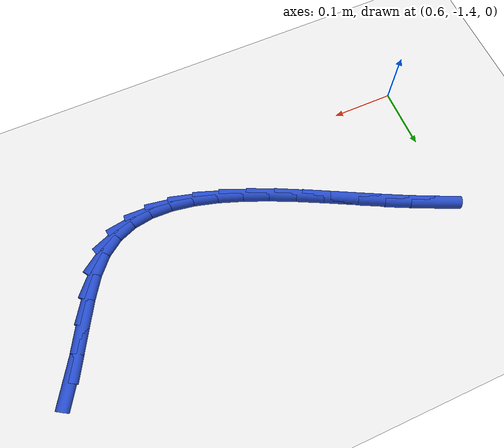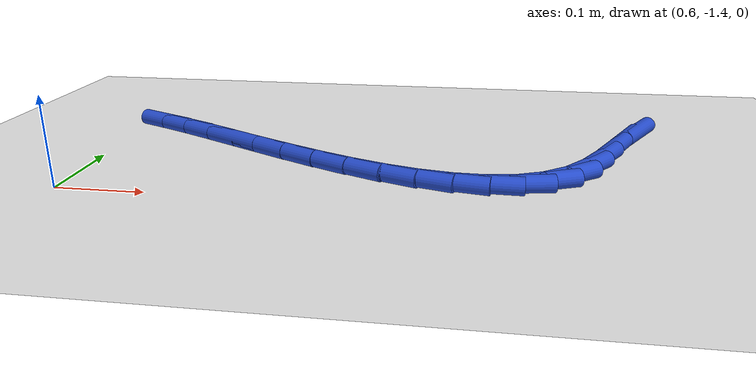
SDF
<sdf version="1.6">
 <world name="default">
  <model name="ground_plane">
   <static>1</static>
   <link name="link">
    <collision name="collision">
     <geometry><plane><normal>0 0 1</normal><size>100 100</size></plane></geometry>
     <surface><friction><ode><mu>100</mu><mu2>50</mu2></ode></friction></surface>
    </collision>
    <visual name="visual">
     <cast_shadows>0</cast_shadows>
     <geometry><plane><normal>0 0 1</normal><size>100 100</size></plane></geometry>
     <material>
      <script><uri>file://media/materials/scripts/gazebo.material</uri><name>Gazebo/WhiteGlow</name></script>
     </material>
    </visual>
   </link>
  </model>
  <model name="line">
   <link name="link_174">
    <pose>1.2401768065578014 -1.1553934846867653 0.01 0 1.57 1.0174920956417313</pose>
    <collision name="collision">
     <geometry><cylinder><radius>0.01</radius><length>0.08</length></cylinder></geometry>
    </collision>
    <visual name="visual">
     <material>
      <script><name>Gazebo/Blue</name><uri>file://media/materials/scripts/gazebo.material</uri></script>
     </material>
     <geometry><cylinder><radius>0.01</radius><length>0.08</length></cylinder></geometry>
    </visual>
   </link>
   <link name="link_175">
    <pose>1.219661580398165 -1.188607876841571 0.01 0 1.57 1.0715273331995172</pose>
    <collision name="collision">
     <geometry><cylinder><radius>0.01</radius><length>0.08</length></cylinder></geometry>
    </collision>
    <visual name="visual">
     <material>
      <script><name>Gazebo/Blue</name><uri>file://media/materials/scripts/gazebo.material</uri></script>
     </material>
     <geometry><cylinder><radius>0.01</radius><length>0.08</length></cylinder></geometry>
    </visual>
   </link>
   <link name="link_176">
    <pose>1.2002529539562488 -1.2241969387414275 0.01 0 1.57 1.0674392100808892</pose>
    <collision name="collision">
     <geometry><cylinder><radius>0.01</radius><length>0.08</length></cylinder></geometry>
    </collision>
    <visual name="visual">
     <material>
      <script><name>Gazebo/Blue</name><uri>file://media/materials/scripts/gazebo.material</uri></script>
     </material>
     <geometry><cylinder><radius>0.01</radius><length>0.08</length></cylinder></geometry>
    </visual>
   </link>
   <link name="link_177">
    <pose>1.1808104629855123 -1.259503940761958 0.01 0 1.57 1.003652355438455</pose>
    <collision name="collision">
     <geometry><cylinder><radius>0.01</radius><length>0.08</length></cylinder></geometry>
    </collision>
    <visual name="visual">
     <material>
      <script><name>Gazebo/Blue</name><uri>file://media/materials/scripts/gazebo.material</uri></script>
     </material>
     <geometry><cylinder><radius>0.01</radius><length>0.08</length></cylinder></geometry>
    </visual>
   </link>
   <link name="link_178">
    <pose>1.1601936432394164 -1.2918721532787856 0.01 0 1.57 0.8625235053478053</pose>
    <collision name="collision">
     <geometry><cylinder><radius>0.01</radius><length>0.08</length></cylinder></geometry>
    </collision>
    <visual name="visual">
     <material>
      <script><name>Gazebo/Blue</name><uri>file://media/materials/scripts/gazebo.material</uri></script>
     </material>
     <geometry><cylinder><radius>0.01</radius><length>0.08</length></cylinder></geometry>
    </visual>
   </link>
   <link name="link_179">
    <pose>1.137262030471421 -1.318644846667533 0.01 0 1.57 0.6308498386928685</pose>
    <collision name="collision">
     <geometry><cylinder><radius>0.01</radius><length>0.08</length></cylinder></geometry>
    </collision>
    <visual name="visual">
     <material>
      <script><name>Gazebo/Blue</name><uri>file://media/materials/scripts/gazebo.material</uri></script>
     </material>
     <geometry><cylinder><radius>0.01</radius><length>0.08</length></cylinder></geometry>
    </visual>
   </link>
   <link name="link_180">
    <pose>1.1111269285682475 -1.3377343734861393 0.01 0 1.57 0.3783108582923895</pose>
    <collision name="collision">
     <geometry><cylinder><radius>0.01</radius><length>0.08</length></cylinder></geometry>
    </collision>
    <visual name="visual">
     <material>
      <script><name>Gazebo/Blue</name><uri>file://media/materials/scripts/gazebo.material</uri></script>
     </material>
     <geometry><cylinder><radius>0.01</radius><length>0.08</length></cylinder></geometry>
    </visual>
   </link>
   <link name="link_181">
    <pose>1.0819137466115853 -1.3493453112456404 0.01 0 1.57 0.15279222314642193</pose>
    <collision name="collision">
     <geometry><cylinder><radius>0.01</radius><length>0.08</length></cylinder></geometry>
    </collision>
    <visual name="visual">
     <material>
      <script><name>Gazebo/Blue</name><uri>file://media/materials/scripts/gazebo.material</uri></script>
     </material>
     <geometry><cylinder><radius>0.01</radius><length>0.08</length></cylinder></geometry>
    </visual>
   </link>
   <link name="link_182">
    <pose>1.0500031904076639 -1.35425929546381 0.01 0 1.57 -0.029247135298843752</pose>
    <collision name="collision">
     <geometry><cylinder><radius>0.01</radius><length>0.08</length></cylinder></geometry>
    </collision>
    <visual name="visual">
     <material>
      <script><name>Gazebo/Blue</name><uri>file://media/materials/scripts/gazebo.material</uri></script>
     </material>
     <geometry><cylinder><radius>0.01</radius><length>0.08</length></cylinder></geometry>
    </visual>
   </link>
   <link name="link_183">
    <pose>1.0157759657658774 -1.3532579616655755 0.01 0 1.57 -0.16804812903808078</pose>
    <collision name="collision">
     <geometry><cylinder><radius>0.01</radius><length>0.08</length></cylinder></geometry>
    </collision>
    <visual name="visual">
     <material>
      <script><name>Gazebo/Blue</name><uri>file://media/materials/scripts/gazebo.material</uri></script>
     </material>
     <geometry><cylinder><radius>0.01</radius><length>0.08</length></cylinder></geometry>
    </visual>
   </link>
   <link name="link_184">
    <pose>0.9796127784956193 -1.3471229453758655 0.01 0 1.57 -0.2711860162954987</pose>
    <collision name="collision">
     <geometry><cylinder><radius>0.01</radius><length>0.08</length></cylinder></geometry>
    </collision>
    <visual name="visual">
     <material>
      <script><name>Gazebo/Blue</name><uri>file://media/materials/scripts/gazebo.material</uri></script>
     </material>
     <geometry><cylinder><radius>0.01</radius><length>0.08</length></cylinder></geometry>
    </visual>
   </link>
   <link name="link_185">
    <pose>0.9418943344062861 -1.3366358821196074 0.01 0 1.57 -0.34682956774973245</pose>
    <collision name="collision">
     <geometry><cylinder><radius>0.01</radius><length>0.08</length></cylinder></geometry>
    </collision>
    <visual name="visual">
     <material>
      <script><name>Gazebo/Blue</name><uri>file://media/materials/scripts/gazebo.material</uri></script>
     </material>
     <geometry><cylinder><radius>0.01</radius><length>0.08</length></cylinder></geometry>
    </visual>
   </link>
   <link name="link_186">
    <pose>0.9030013393072701 -1.322578407421728 0.01 0 1.57 -0.4014297070777877</pose>
    <collision name="collision">
     <geometry><cylinder><radius>0.01</radius><length>0.08</length></cylinder></geometry>
    </collision>
    <visual name="visual">
     <material>
      <script><name>Gazebo/Blue</name><uri>file://media/materials/scripts/gazebo.material</uri></script>
     </material>
     <geometry><cylinder><radius>0.01</radius><length>0.08</length></cylinder></geometry>
    </visual>
   </link>
   <link name="link_187">
    <pose>0.8633144990079665 -1.305732156807156 0.01 0 1.57 -0.43949161464523706</pose>
    <collision name="collision">
     <geometry><cylinder><radius>0.01</radius><length>0.08</length></cylinder></geometry>
    </collision>
    <visual name="visual">
     <material>
      <script><name>Gazebo/Blue</name><uri>file://media/materials/scripts/gazebo.material</uri></script>
     </material>
     <geometry><cylinder><radius>0.01</radius><length>0.08</length></cylinder></geometry>
    </visual>
   </link>
   <link name="link_188">
    <pose>0.823214519317768 -1.286878765800818 0.01 0 1.57 -0.4639005244149571</pose>
    <collision name="collision">
     <geometry><cylinder><radius>0.01</radius><length>0.08</length></cylinder></geometry>
    </collision>
    <visual name="visual">
     <material>
      <script><name>Gazebo/Blue</name><uri>file://media/materials/scripts/gazebo.material</uri></script>
     </material>
     <geometry><cylinder><radius>0.01</radius><length>0.08</length></cylinder></geometry>
    </visual>
   </link>
   <link name="link_189">
    <pose>0.7830821060460711 -1.2667998699276428 0.01 0 1.57 -0.476249361588625</pose>
    <collision name="collision">
     <geometry><cylinder><radius>0.01</radius><length>0.08</length></cylinder></geometry>
    </collision>
    <visual name="visual">
     <material>
      <script><name>Gazebo/Blue</name><uri>file://media/materials/scripts/gazebo.material</uri></script>
     </material>
     <geometry><cylinder><radius>0.01</radius><length>0.08</length></cylinder></geometry>
    </visual>
   </link>
   <link name="link_190">
    <pose>0.7432979650022687 -1.2462771047125574 0.01 0 1.57 -0.4770231855649664</pose>
    <collision name="collision">
     <geometry><cylinder><radius>0.01</radius><length>0.08</length></cylinder></geometry>
    </collision>
    <visual name="visual">
     <material>
      <script><name>Gazebo/Blue</name><uri>file://media/materials/scripts/gazebo.material</uri></script>
     </material>
     <geometry><cylinder><radius>0.01</radius><length>0.08</length></cylinder></geometry>
    </visual>
   </link>
   <link name="link_191">
    <pose>0.7042428019957551 -1.226092105680489 0.01 0 1.57 -0.4656034007875039</pose>
    <collision name="collision">
     <geometry><cylinder><radius>0.01</radius><length>0.08</length></cylinder></geometry>
    </collision>
    <visual name="visual">
     <material>
      <script><name>Gazebo/Blue</name><uri>file://media/materials/scripts/gazebo.material</uri></script>
     </material>
     <geometry><cylinder><radius>0.01</radius><length>0.08</length></cylinder></geometry>
    </visual>
   </link>
   <link name="link_192">
    <pose>0.6662973228359239 -1.2070265083563654 0.01 0 1.57 -0.44019921104598464</pose>
    <collision name="collision">
     <geometry><cylinder><radius>0.01</radius><length>0.08</length></cylinder></geometry>
    </collision>
    <visual name="visual">
     <material>
      <script><name>Gazebo/Blue</name><uri>file://media/materials/scripts/gazebo.material</uri></script>
     </material>
     <geometry><cylinder><radius>0.01</radius><length>0.08</length></cylinder></geometry>
    </visual>
   </link>
   <link name="link_193">
    <pose>0.629841411336616 -1.1898549022643512 0.01 0 1.57 -0.41825496039725346</pose>
    <collision name="collision">
     <geometry><cylinder><radius>0.01</radius><length>0.08</length></cylinder></geometry>
    </collision>
    <visual name="visual">
     <material>
      <script><name>Gazebo/Blue</name><uri>file://media/materials/scripts/gazebo.material</uri></script>
     </material>
     <geometry><cylinder><radius>0.01</radius><length>0.08</length></cylinder></geometry>
    </visual>
   </link>
  </model>
 </world>
</sdf>
